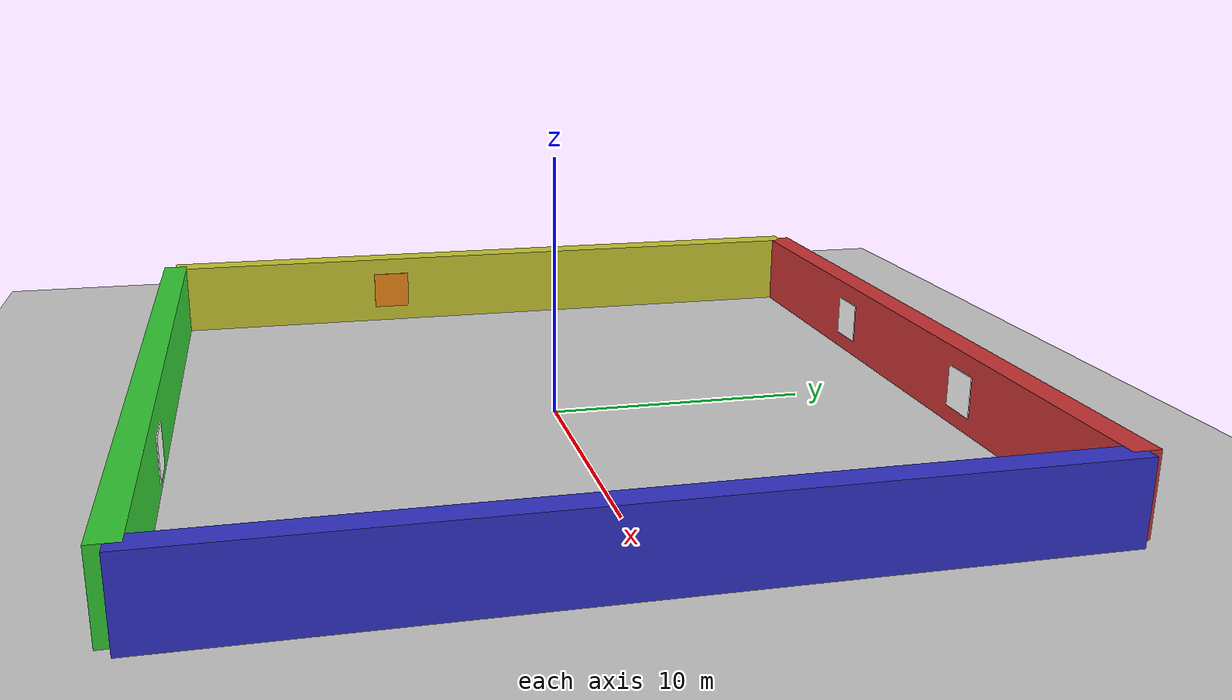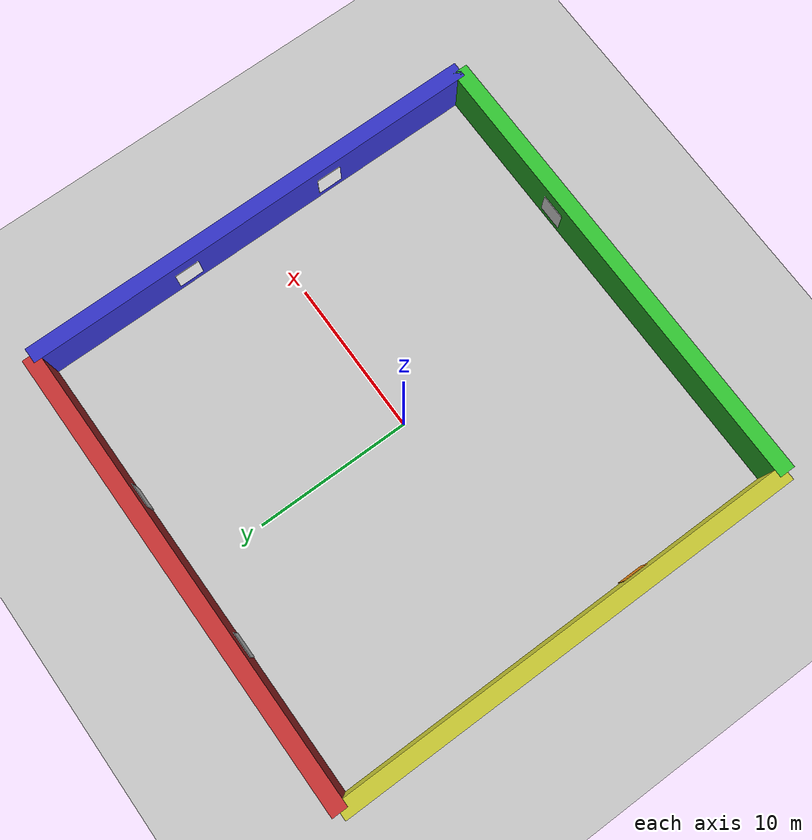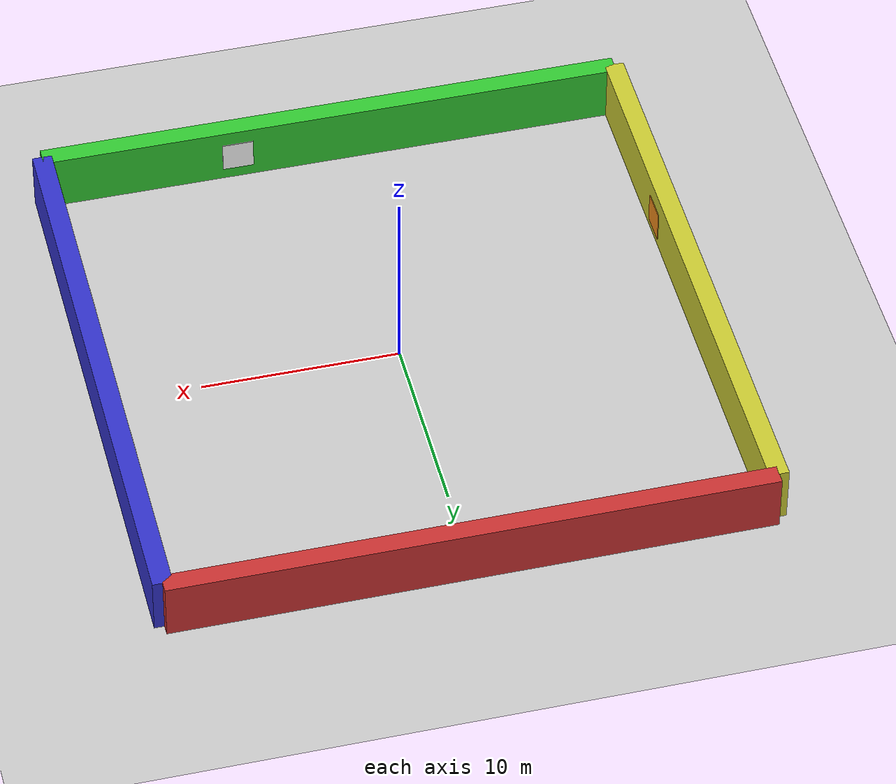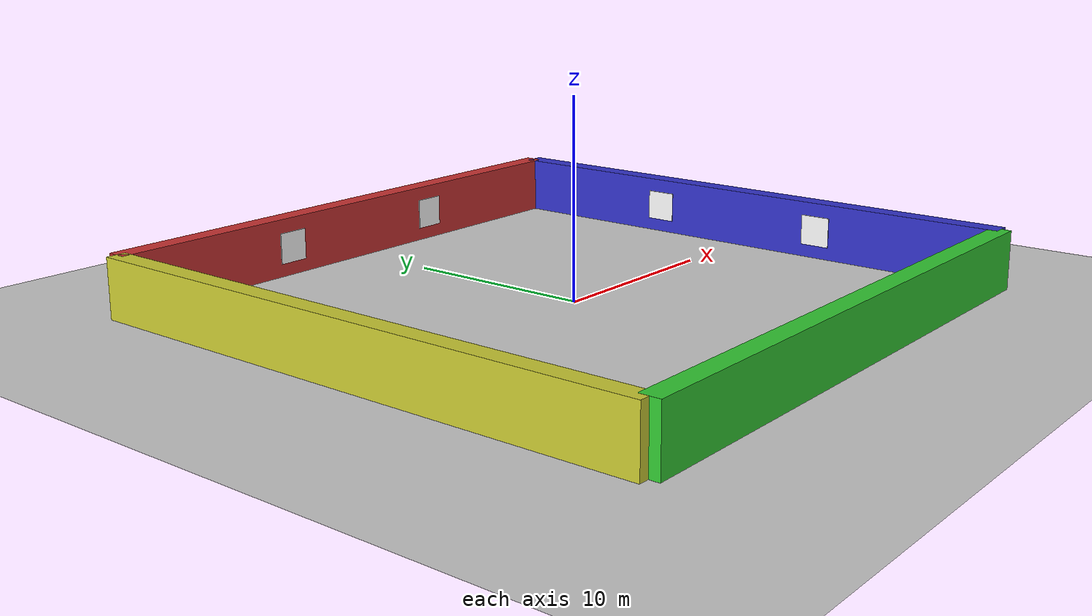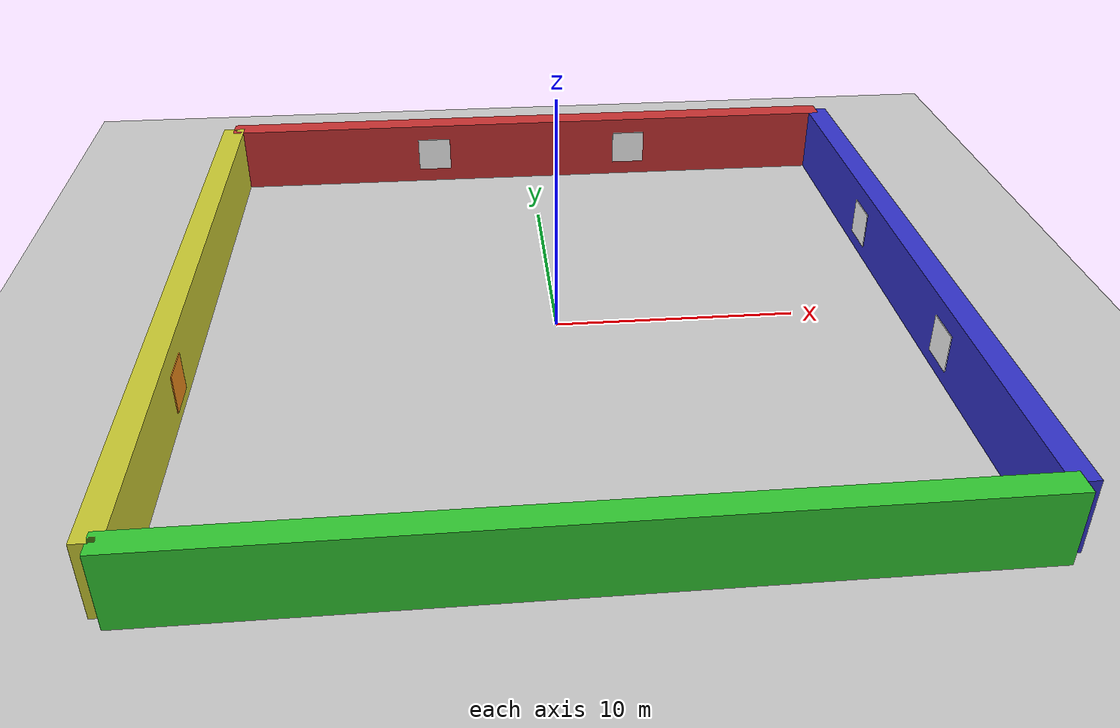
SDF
<sdf version="1.6">
  <world name="default">
    <physics name="1ms" type="ode">
      <max_step_size>0.001</max_step_size>
      <real_time_update_rate>1000</real_time_update_rate>
    </physics>

    <!-- Add a gray ground plane -->
    <model name="ground_plane">
      <static>true</static>
      <link name="link">
        <collision name="collision">
          <geometry>
            <plane>
              <normal>0 0 1</normal>
              <size>100 100</size>
            </plane>
          </geometry>
        </collision>
        <visual name="visual">
          <geometry>
            <plane>
              <normal>0 0 1</normal>
              <size>100 100</size>
            </plane>
          </geometry>
          <material>
            <ambient>0.8 0.8 0.8 1</ambient>
            <diffuse>0.8 0.8 0.8 1</diffuse>
            <specular>0.1 0.1 0.1 1</specular>
          </material>
        </visual>
      </link>
    </model>

    <!-- Add boundary walls -->
    <!-- North wall -->
    <model name="wall_north">
      <static>true</static>
      <pose>0 15 1.5 0 0 0</pose>
      <link name="link">
        <collision name="collision">
          <geometry>
            <box>
              <size>30 1.0 3</size>
            </box>
          </geometry>
        </collision>
        <visual name="visual">
          <geometry>
            <box>
              <size>30 1.0 3</size>
            </box>
          </geometry>
          <material>
            <ambient>0.8 0.2 0.2 1</ambient>
            <diffuse>0.8 0.2 0.2 1</diffuse>
            <specular>0.1 0.1 0.1 1</specular>
          </material>
        </visual>
      </link>
    </model>

    <!-- South wall -->
    <model name="wall_south">
      <static>true</static>
      <pose>0 -15 1.5 0 0 0</pose>
      <link name="link">
        <collision name="collision">
          <geometry>
            <box>
              <size>30 1.0 3</size>
            </box>
          </geometry>
        </collision>
        <visual name="visual">
          <geometry>
            <box>
              <size>30 1.0 3</size>
            </box>
          </geometry>
          <material>
            <ambient>0.2 0.8 0.2 1</ambient>
            <diffuse>0.2 0.8 0.2 1</diffuse>
            <specular>0.1 0.1 0.1 1</specular>
          </material>
        </visual>
      </link>
    </model>

    <!-- East wall -->
    <model name="wall_east">
      <static>true</static>
      <pose>15 0 1.5 0 0 0</pose>
      <link name="link">
        <collision name="collision">
          <geometry>
            <box>
              <size>1.0 30 3</size>
            </box>
          </geometry>
        </collision>
        <visual name="visual">
          <geometry>
            <box>
              <size>1.0 30 3</size>
            </box>
          </geometry>
          <material>
            <ambient>0.2 0.2 0.8 1</ambient>
            <diffuse>0.2 0.2 0.8 1</diffuse>
            <specular>0.1 0.1 0.1 1</specular>
          </material>
        </visual>
      </link>
    </model>

    <!-- West wall -->
    <model name="wall_west">
      <static>true</static>
      <pose>-15 0 1.5 0 0 0</pose>
      <link name="link">
        <collision name="collision">
          <geometry>
            <box>
              <size>1.0 30 3</size>
            </box>
          </geometry>
        </collision>
        <visual name="visual">
          <geometry>
            <box>
              <size>1.0 30 3</size>
            </box>
          </geometry>
          <material>
            <ambient>0.8 0.8 0.2 1</ambient>
            <diffuse>0.8 0.8 0.2 1</diffuse>
            <specular>0.1 0.1 0.1 1</specular>
          </material>
        </visual>
      </link>
    </model>

    <light type="directional" name="sun">
      <cast_shadows>true</cast_shadows>
      <pose>0 0 10 0 0 0</pose>
      <diffuse>0.8 0.8 0.8 1</diffuse>
      <specular>0.2 0.2 0.2 1</specular>
      <attenuation>
        <range>1000</range>
        <constant>0.9</constant>
        <linear>0.01</linear>
        <quadratic>0.001</quadratic>
      </attenuation>
      <direction>-0.5 0.1 -0.9</direction>
    </light>

    <!-- Traffic Sign Posters -->

    <!-- Stop sign on north wall (facing south, towards arena centre) -->
     <!-- Stop sign on north wall -->
	<include>
	  <uri>model://stop_sign_poster</uri>
	  <name>stop_sign_1</name>
	  <pose>-5 14.4 1.5 0 0 -1.5708</pose>
	</include>

	<!-- Fast sign on east wall -->
	<include>
	  <uri>model://fast_sign_poster</uri>
	  <name>fast_sign_1</name>
	  <pose>14.4 5 1.5 0 0 3.14159</pose>
	</include>

	<!-- Slow sign on south wall -->
	<include>
	  <uri>model://slow_sign_poster</uri>
	  <name>slow_sign_1</name>
	  <pose>5 -14.4 1.5 0 0 1.5708</pose>
	</include>

	<!-- Orange poster on west wall (yaw=0 so box X-axis points east into arena) -->
	<include>
	  <uri>model://orange_poster</uri>
	  <name>orange_poster_1</name>
	  <pose>-14.4 -5 1.5 0 0 0.0</pose>
	</include>

	<!-- Vehicle poster on north wall (yaw=-1.5708 so box X-axis points south into arena) -->
	<include>
	  <uri>model://vehicle_poster</uri>
	  <name>vehicle_poster_1</name>
	  <pose>5 14.4 1.5 0 0 -1.5708</pose>
	</include>

	<!-- Tree poster on east wall (yaw=3.14159 so box X-axis points west into arena) -->
	<include>
	  <uri>model://tree_poster</uri>
	  <name>tree_poster_1</name>
	  <pose>14.4 -5 1.5 0 0 3.14159</pose>
	</include>

    <gravity>0 0 -9.8</gravity>
    <magnetic_field>6e-06 2.3e-05 -4.2e-05</magnetic_field>
    <atmosphere type="adiabatic">
      <pressure>101325</pressure>
      <temperature>288.15</temperature>
    </atmosphere>
  </world>
</sdf>

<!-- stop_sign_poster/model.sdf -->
<sdf version="1.6">
  <model name="stop_sign_poster">
    <static>true</static>
    <link name="poster">
      <visual name="poster_visual">
        <pose>0 0 0 0 0 0</pose>
        <geometry>
          <box>
            <size>0.04 1.6 1.6</size>
          </box>
        </geometry>
        <material>
          <ambient>1.0 1.0 1.0 1</ambient>
          <diffuse>1.0 1.0 1.0 1</diffuse>
          <script>
            <uri>model://stop_sign_poster/materials/scripts</uri>
            <uri>model://stop_sign_poster/materials/textures</uri>
            <name>StopSignPoster</name>
          </script>
        </material>
      </visual>
      <collision name="poster_collision">
        <pose>0 0 0 0 0 0</pose>
        <geometry>
          <box>
            <size>0.04 1.6 1.6</size>
          </box>
        </geometry>
      </collision>
    </link>
  </model>
</sdf>

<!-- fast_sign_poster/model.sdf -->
<sdf version="1.6">
  <model name="fast_sign_poster">
    <static>true</static>
    <link name="poster">
      <visual name="poster_visual">
        <pose>0 0 0 0 0 0</pose>
        <geometry>
          <box>
            <size>0.04 1.6 1.6</size>
          </box>
        </geometry>
        <material>
          <ambient>1.0 1.0 1.0 1</ambient>
          <diffuse>1.0 1.0 1.0 1</diffuse>
          <script>
            <uri>model://fast_sign_poster/materials/scripts</uri>
            <uri>model://fast_sign_poster/materials/textures</uri>
            <name>FastSignPoster</name>
          </script>
        </material>
      </visual>
      <collision name="poster_collision">
        <pose>0 0 0 0 0 0</pose>
        <geometry>
          <box>
            <size>0.04 1.6 1.6</size>
          </box>
        </geometry>
      </collision>
    </link>
  </model>
</sdf>

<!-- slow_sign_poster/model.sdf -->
<sdf version="1.6">
  <model name="slow_sign_poster">
    <static>true</static>
    <link name="poster">
      <visual name="poster_visual">
        <pose>0 0 0 0 0 0</pose>
        <geometry>
          <box>
            <size>0.04 1.6 1.6</size>
          </box>
        </geometry>
        <material>
          <ambient>1.0 1.0 1.0 1</ambient>
          <diffuse>1.0 1.0 1.0 1</diffuse>
          <script>
            <uri>model://slow_sign_poster/materials/scripts</uri>
            <uri>model://slow_sign_poster/materials/textures</uri>
            <name>SlowSignPoster</name>
          </script>
        </material>
      </visual>
      <collision name="poster_collision">
        <pose>0 0 0 0 0 0</pose>
        <geometry>
          <box>
            <size>0.04 1.6 1.6</size>
          </box>
        </geometry>
      </collision>
    </link>
  </model>
</sdf>

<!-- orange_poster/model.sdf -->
<sdf version="1.6">
  <model name="orange_poster">
    <static>true</static>
    <link name="poster">
      <visual name="poster_visual">
        <pose>0 0 0 0 0 0</pose>
        <geometry>
          <box>
            <size>0.04 1.6 1.6</size>
          </box>
        </geometry>
        <material>
          <ambient>1.0 1.0 1.0 1</ambient>
          <diffuse>1.0 1.0 1.0 1</diffuse>
          <script>
            <uri>model://orange_poster/materials/scripts</uri>
            <uri>model://orange_poster/materials/textures</uri>
            <name>OrangePoster</name>
          </script>
        </material>
      </visual>
      <collision name="poster_collision">
        <pose>0 0 0 0 0 0</pose>
        <geometry>
          <box>
            <size>0.04 1.6 1.6</size>
          </box>
        </geometry>
      </collision>
    </link>
  </model>
</sdf>

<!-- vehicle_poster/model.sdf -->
<sdf version="1.6">
  <model name="vehicle_poster">
    <static>true</static>
    <link name="poster">
      <visual name="poster_visual">
        <pose>0 0 0 0 0 0</pose>
        <geometry>
          <box>
            <size>0.04 1.6 1.6</size>
          </box>
        </geometry>
        <material>
          <ambient>1.0 1.0 1.0 1</ambient>
          <diffuse>1.0 1.0 1.0 1</diffuse>
          <script>
            <uri>model://vehicle_poster/materials/scripts</uri>
            <uri>model://vehicle_poster/materials/textures</uri>
            <name>VehiclePoster</name>
          </script>
        </material>
      </visual>
      <collision name="poster_collision">
        <pose>0 0 0 0 0 0</pose>
        <geometry>
          <box>
            <size>0.04 1.6 1.6</size>
          </box>
        </geometry>
      </collision>
    </link>
  </model>
</sdf>

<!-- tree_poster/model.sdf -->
<sdf version="1.6">
  <model name="tree_poster">
    <static>true</static>
    <link name="poster">
      <visual name="poster_visual">
        <pose>0 0 0 0 0 0</pose>
        <geometry>
          <box>
            <size>0.04 1.6 1.6</size>
          </box>
        </geometry>
        <material>
          <ambient>1.0 1.0 1.0 1</ambient>
          <diffuse>1.0 1.0 1.0 1</diffuse>
          <script>
            <uri>model://tree_poster/materials/scripts</uri>
            <uri>model://tree_poster/materials/textures</uri>
            <name>TreePoster</name>
          </script>
        </material>
      </visual>
      <collision name="poster_collision">
        <pose>0 0 0 0 0 0</pose>
        <geometry>
          <box>
            <size>0.04 1.6 1.6</size>
          </box>
        </geometry>
      </collision>
    </link>
  </model>
</sdf>
